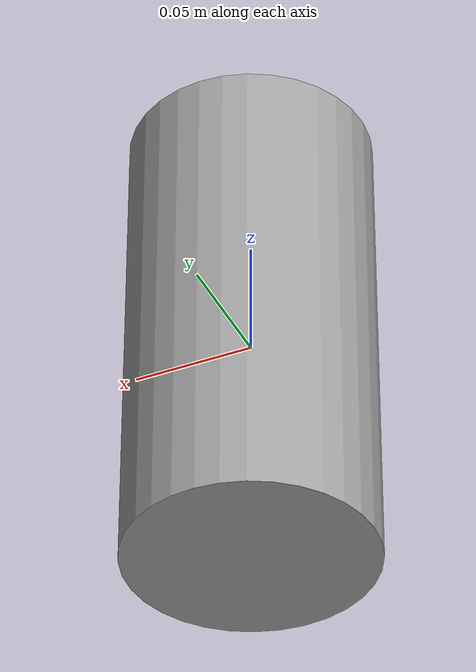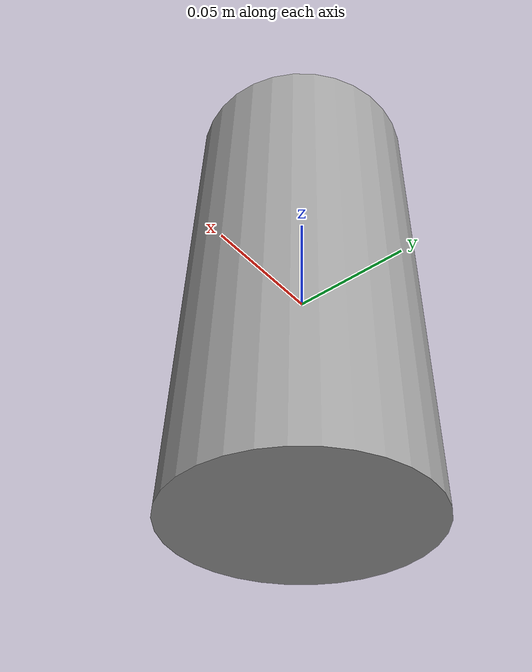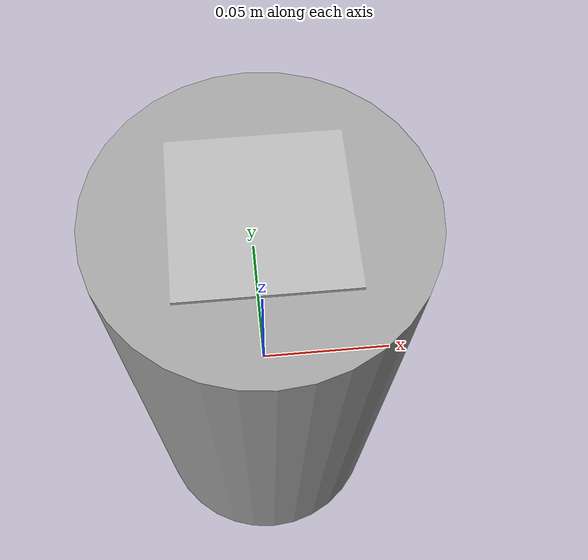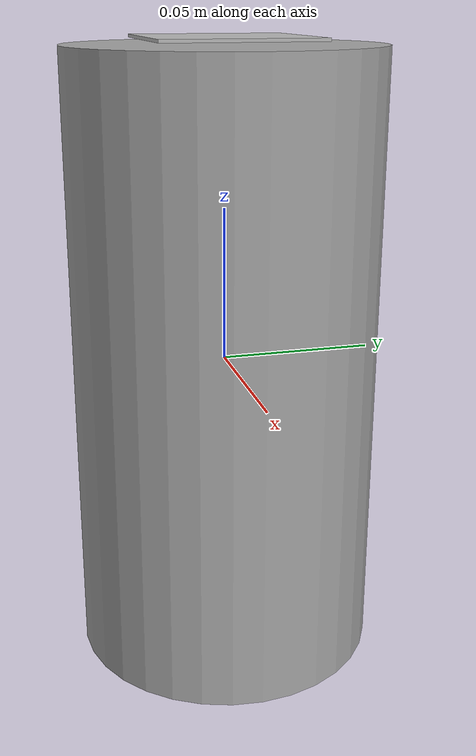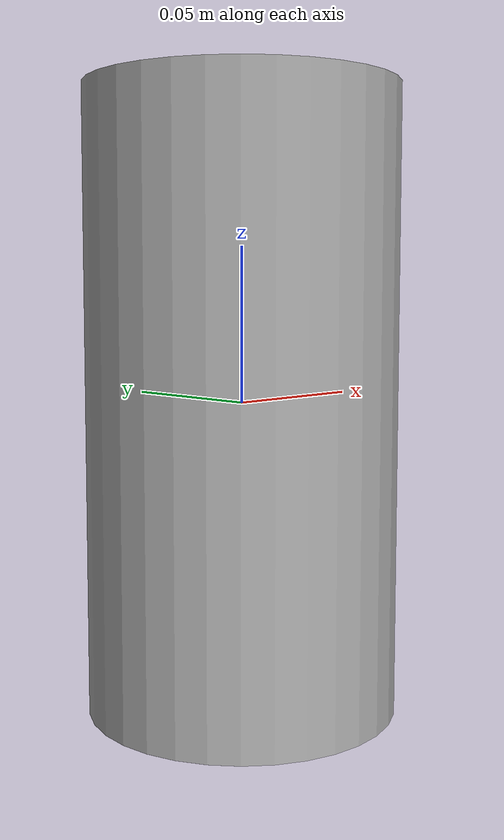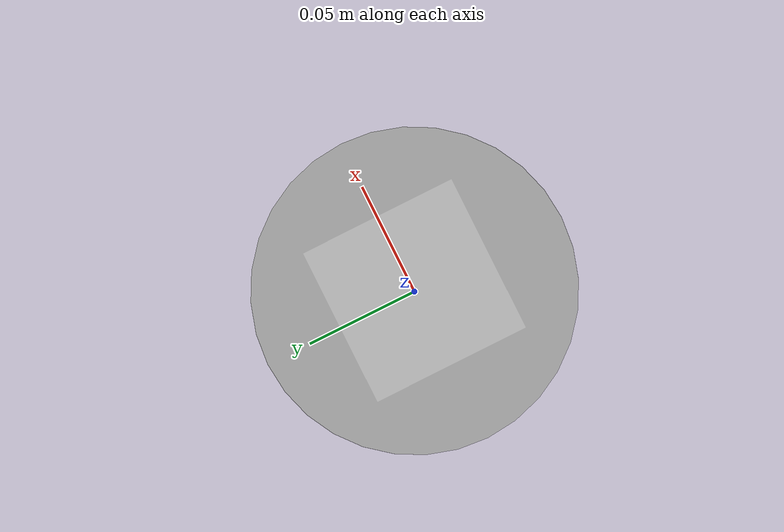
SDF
<?xml version="1.0" ?>
<sdf version="1.5">
  <model name="jar_marker">
    <link name="link">
      <gravity>false</gravity>
      <inertial>
        <pose>0 0 0 0 0 0</pose>
        <mass>0.2</mass>
        <inertia>
          <ixx>0.00079</ixx>
          <ixy>0</ixy>
          <ixz>0</ixz>
          <iyy>0.00079</iyy>
          <iyz>0</iyz>
          <izz>0.00025</izz>
        </inertia>
      </inertial>
      <collision name="collision">
        <pose>0 0 0 0 0 0</pose>
        <geometry>
          <mesh>
            <uri>model://jar_marker/meshes/jar_marker.dae</uri>
          </mesh>
        </geometry>
        <surface>
          <friction>
            <ode>
              <mu>1.0</mu>
              <mu2>1.0</mu2>
            </ode>
          </friction>
          <contact>
            <ode>
              <kp>10000000.0</kp>
              <kd>1.0</kd>
              <min_depth>0.001</min_depth>
              <max_vel>0.1</max_vel>
            </ode>
          </contact>
        </surface>
      </collision>
      <visual name="visual">
        <pose>0 0 0 0 0 0</pose>
        <geometry>
          <mesh>
            <uri>model://jar_marker/meshes/jar_marker.dae</uri>
          </mesh>
        </geometry>
      </visual>
    </link>
  </model>
</sdf>
